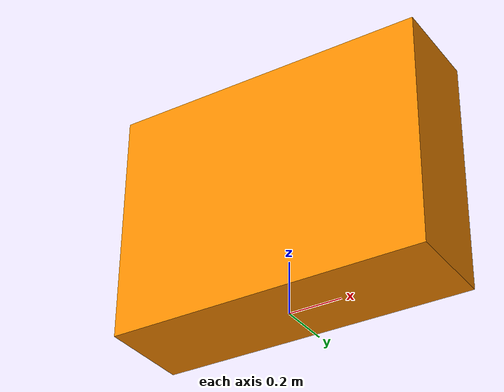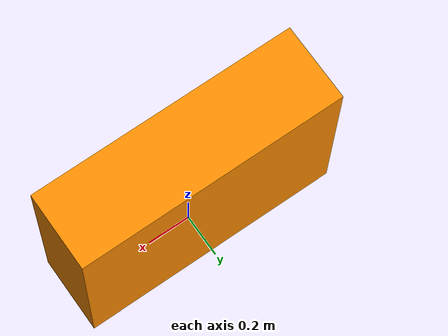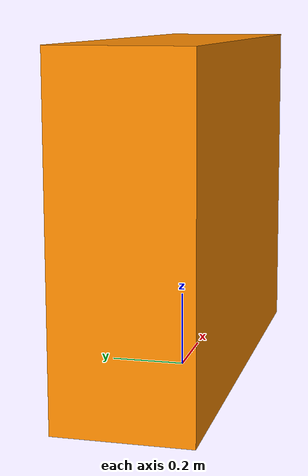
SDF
<?xml version="1.0"?>
<sdf version="1.7"><model name="barricade"><static>false</static><link name="link"><pose>0 0 0.45 0 0 0</pose><inertial><mass>8</mass><inertia><ixx>0.5</ixx><iyy>0.5</iyy><izz>0.5</izz></inertia></inertial><collision name="collision"><geometry><box><size>1.2 0.35 0.9</size></box></geometry></collision><visual name="visual"><geometry><box><size>1.2 0.35 0.9</size></box></geometry><material><ambient>1 0.55 0 1</ambient><diffuse>1 0.55 0 1</diffuse></material></visual></link></model></sdf>
